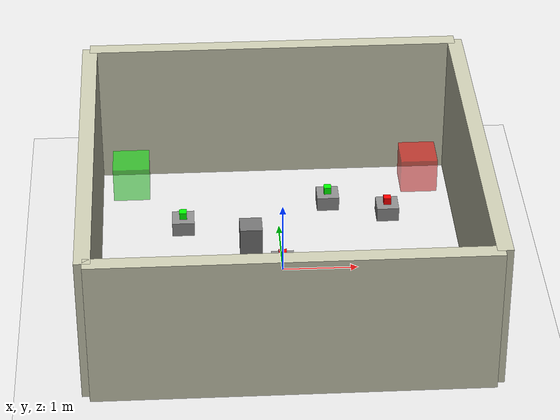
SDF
<?xml version="1.0" ?>
<sdf version="1.8">
  <world name="sorting_room">

    <!-- Physics -->
    <physics name="1ms" type="ignored">
      <max_step_size>0.001</max_step_size>
      <real_time_factor>1.0</real_time_factor>
    </physics>

    <plugin filename="gz-sim-physics-system" name="gz::sim::systems::Physics"></plugin>
    <plugin filename="gz-sim-user-commands-system" name="gz::sim::systems::UserCommands"></plugin>
    <plugin filename="gz-sim-scene-broadcaster-system" name="gz::sim::systems::SceneBroadcaster"></plugin>
    <plugin filename="gz-sim-sensors-system" name="gz::sim::systems::Sensors">
      <render_engine>ogre2</render_engine>
    </plugin>

    <!-- Lighting -->
    <light type="directional" name="sun">
      <cast_shadows>true</cast_shadows>
      <pose>0 0 10 0 0 0</pose>
      <diffuse>0.8 0.8 0.8 1</diffuse>
      <specular>0.2 0.2 0.2 1</specular>
      <direction>-0.5 0.1 -0.9</direction>
    </light>

    <!-- Ground -->
    <model name="ground_plane">
      <static>true</static>
      <link name="link">
        <collision name="collision">
          <geometry>
            <plane>
              <normal>0 0 1</normal>
              <size>100 100</size>
            </plane>
          </geometry>
        </collision>
        <visual name="visual">
          <geometry>
            <plane>
              <normal>0 0 1</normal>
              <size>100 100</size>
            </plane>
          </geometry>
          <material>
            <ambient>0.9 0.9 0.9 1</ambient>
            <diffuse>0.9 0.9 0.9 1</diffuse>
          </material>
        </visual>
      </link>
    </model>

    <!-- ROOM WALLS (5m x 5m room) -->

    <!-- North Wall -->
    <model name="wall_north">
      <pose>0 2.5 1.0 0 0 0</pose>
      <static>true</static>
      <link name="link">
        <collision name="collision">
          <geometry>
            <box><size>5.0 0.2 2.0</size></box>
          </geometry>
        </collision>
        <visual name="visual">
          <geometry>
            <box><size>5.0 0.2 2.0</size></box>
          </geometry>
          <material>
            <ambient>0.8 0.8 0.7 1</ambient>
            <diffuse>0.8 0.8 0.7 1</diffuse>
          </material>
        </visual>
      </link>
    </model>

    <!-- South Wall -->
    <model name="wall_south">
      <pose>0 -2.5 1.0 0 0 0</pose>
      <static>true</static>
      <link name="link">
        <collision name="collision">
          <geometry>
            <box><size>5.0 0.2 2.0</size></box>
          </geometry>
        </collision>
        <visual name="visual">
          <geometry>
            <box><size>5.0 0.2 2.0</size></box>
          </geometry>
          <material>
            <ambient>0.8 0.8 0.7 1</ambient>
            <diffuse>0.8 0.8 0.7 1</diffuse>
          </material>
        </visual>
      </link>
    </model>

    <!-- East Wall -->
    <model name="wall_east">
      <pose>2.5 0 1.0 0 0 0</pose>
      <static>true</static>
      <link name="link">
        <collision name="collision">
          <geometry>
            <box><size>0.2 5.0 2.0</size></box>
          </geometry>
        </collision>
        <visual name="visual">
          <geometry>
            <box><size>0.2 5.0 2.0</size></box>
          </geometry>
          <material>
            <ambient>0.8 0.8 0.7 1</ambient>
            <diffuse>0.8 0.8 0.7 1</diffuse>
          </material>
        </visual>
      </link>
    </model>

    <!-- West Wall -->
    <model name="wall_west">
      <pose>-2.5 0 1.0 0 0 0</pose>
      <static>true</static>
      <link name="link">
        <collision name="collision">
          <geometry>
            <box><size>0.2 5.0 2.0</size></box>
          </geometry>
        </collision>
        <visual name="visual">
          <geometry>
            <box><size>0.2 5.0 2.0</size></box>
          </geometry>
          <material>
            <ambient>0.8 0.8 0.7 1</ambient>
            <diffuse>0.8 0.8 0.7 1</diffuse>
          </material>
        </visual>
      </link>
    </model>

    <!-- RED BASKET (Collection point for red boxes) -->
    <model name="red_basket">
      <pose>2.0 2.0 0.25 0 0 0</pose>
      <static>true</static>
      <link name="link">
        <collision name="collision">
          <geometry>
            <box><size>0.5 0.5 0.5</size></box>
          </geometry>
        </collision>
        <visual name="visual">
          <geometry>
            <box><size>0.5 0.5 0.5</size></box>
          </geometry>
          <material>
            <ambient>1 0 0 0.5</ambient>
            <diffuse>1 0 0 0.5</diffuse>
          </material>
        </visual>
      </link>
    </model>

    <!-- GREEN BASKET -->
    <model name="green_basket">
      <pose>-2.0 2.0 0.25 0 0 0</pose>
      <static>true</static>
      <link name="link">
        <collision name="collision">
          <geometry>
            <box><size>0.5 0.5 0.5</size></box>
          </geometry>
        </collision>
        <visual name="visual">
          <geometry>
            <box><size>0.5 0.5 0.5</size></box>
          </geometry>
          <material>
            <ambient>0 1 0 0.5</ambient>
            <diffuse>0 1 0 0.5</diffuse>
          </material>
        </visual>
      </link>
    </model>

    <!-- BLUE BASKET -->
    <model name="blue_basket">
      <pose>-2.0 -2.0 0.25 0 0 0</pose>
      <static>true</static>
      <link name="link">
        <collision name="collision">
          <geometry>
            <box><size>0.5 0.5 0.5</size></box>
          </geometry>
        </collision>
        <visual name="visual">
          <geometry>
            <box><size>0.5 0.5 0.5</size></box>
          </geometry>
          <material>
            <ambient>0 0 1 0.5</ambient>
            <diffuse>0 0 1 0.5</diffuse>
          </material>
        </visual>
      </link>
    </model>

    <!-- SMALL COLORED BOXES (0.10m) on 0.20m PEDESTALS -->
    <model name="pedestal_red_box_1">
      <pose>0.0 0.0 0.10 0 0 0</pose>
      <static>true</static>
      <link name="link">
        <collision name="collision">
          <geometry>
            <box><size>0.30 0.30 0.20</size></box>
          </geometry>
        </collision>
        <visual name="visual">
          <geometry>
            <box><size>0.30 0.30 0.20</size></box>
          </geometry>
          <material>
            <ambient>0.55 0.55 0.55 1</ambient>
            <diffuse>0.55 0.55 0.55 1</diffuse>
          </material>
        </visual>
      </link>
    </model>
    <model name="red_box_1">
      <pose>0.0 0.0 0.25 0 0 0.0</pose>
      <static>false</static>
      <link name="link">
        <inertial>
          <mass>0.20</mass>
          <inertia>
            <ixx>0.00033</ixx>
            <iyy>0.00033</iyy>
            <izz>0.00033</izz>
          </inertia>
        </inertial>
        <collision name="collision">
          <geometry>
            <box><size>0.10 0.10 0.10</size></box>
          </geometry>
        </collision>
        <visual name="visual">
          <geometry>
            <box><size>0.10 0.10 0.10</size></box>
          </geometry>
          <material>
            <ambient>1 0 0 1</ambient>
            <diffuse>1 0 0 1</diffuse>
          </material>
        </visual>
      </link>
    </model>

    <model name="pedestal_red_box_2">
      <pose>1.5 1.2 0.10 0 0 0</pose>
      <static>true</static>
      <link name="link">
        <collision name="collision">
          <geometry>
            <box><size>0.30 0.30 0.20</size></box>
          </geometry>
        </collision>
        <visual name="visual">
          <geometry>
            <box><size>0.30 0.30 0.20</size></box>
          </geometry>
          <material>
            <ambient>0.55 0.55 0.55 1</ambient>
            <diffuse>0.55 0.55 0.55 1</diffuse>
          </material>
        </visual>
      </link>
    </model>
    <model name="red_box_2">
      <pose>1.5 1.2 0.25 0 0 0.0</pose>
      <static>false</static>
      <link name="link">
        <inertial>
          <mass>0.20</mass>
          <inertia>
            <ixx>0.00033</ixx>
            <iyy>0.00033</iyy>
            <izz>0.00033</izz>
          </inertia>
        </inertial>
        <collision name="collision">
          <geometry>
            <box><size>0.10 0.10 0.10</size></box>
          </geometry>
        </collision>
        <visual name="visual">
          <geometry>
            <box><size>0.10 0.10 0.10</size></box>
          </geometry>
          <material>
            <ambient>1 0 0 1</ambient>
            <diffuse>1 0 0 1</diffuse>
          </material>
        </visual>
      </link>
    </model>

    <model name="pedestal_green_box_1">
      <pose>-1.3 1.0 0.10 0 0 0</pose>
      <static>true</static>
      <link name="link">
        <collision name="collision">
          <geometry>
            <box><size>0.30 0.30 0.20</size></box>
          </geometry>
        </collision>
        <visual name="visual">
          <geometry>
            <box><size>0.30 0.30 0.20</size></box>
          </geometry>
          <material>
            <ambient>0.55 0.55 0.55 1</ambient>
            <diffuse>0.55 0.55 0.55 1</diffuse>
          </material>
        </visual>
      </link>
    </model>
    <model name="green_box_1">
      <pose>-1.3 1.0 0.25 0 0 0.0</pose>
      <static>false</static>
      <link name="link">
        <inertial>
          <mass>0.20</mass>
          <inertia>
            <ixx>0.00033</ixx>
            <iyy>0.00033</iyy>
            <izz>0.00033</izz>
          </inertia>
        </inertial>
        <collision name="collision">
          <geometry>
            <box><size>0.10 0.10 0.10</size></box>
          </geometry>
        </collision>
        <visual name="visual">
          <geometry>
            <box><size>0.10 0.10 0.10</size></box>
          </geometry>
          <material>
            <ambient>0 1 0 1</ambient>
            <diffuse>0 1 0 1</diffuse>
          </material>
        </visual>
      </link>
    </model>

    <model name="pedestal_green_box_2">
      <pose>0.7 1.5 0.10 0 0 0</pose>
      <static>true</static>
      <link name="link">
        <collision name="collision">
          <geometry>
            <box><size>0.30 0.30 0.20</size></box>
          </geometry>
        </collision>
        <visual name="visual">
          <geometry>
            <box><size>0.30 0.30 0.20</size></box>
          </geometry>
          <material>
            <ambient>0.55 0.55 0.55 1</ambient>
            <diffuse>0.55 0.55 0.55 1</diffuse>
          </material>
        </visual>
      </link>
    </model>
    <model name="green_box_2">
      <pose>0.7 1.5 0.25 0 0 0.0</pose>
      <static>false</static>
      <link name="link">
        <inertial>
          <mass>0.20</mass>
          <inertia>
            <ixx>0.00033</ixx>
            <iyy>0.00033</iyy>
            <izz>0.00033</izz>
          </inertia>
        </inertial>
        <collision name="collision">
          <geometry>
            <box><size>0.10 0.10 0.10</size></box>
          </geometry>
        </collision>
        <visual name="visual">
          <geometry>
            <box><size>0.10 0.10 0.10</size></box>
          </geometry>
          <material>
            <ambient>0 1 0 1</ambient>
            <diffuse>0 1 0 1</diffuse>
          </material>
        </visual>
      </link>
    </model>

    <model name="pedestal_blue_box_1">
      <pose>-0.8 -0.8 0.10 0 0 0</pose>
      <static>true</static>
      <link name="link">
        <collision name="collision">
          <geometry>
            <box><size>0.30 0.30 0.20</size></box>
          </geometry>
        </collision>
        <visual name="visual">
          <geometry>
            <box><size>0.30 0.30 0.20</size></box>
          </geometry>
          <material>
            <ambient>0.55 0.55 0.55 1</ambient>
            <diffuse>0.55 0.55 0.55 1</diffuse>
          </material>
        </visual>
      </link>
    </model>
    <model name="blue_box_1">
      <pose>-0.8 -0.8 0.25 0 0 0.0</pose>
      <static>false</static>
      <link name="link">
        <inertial>
          <mass>0.20</mass>
          <inertia>
            <ixx>0.00033</ixx>
            <iyy>0.00033</iyy>
            <izz>0.00033</izz>
          </inertia>
        </inertial>
        <collision name="collision">
          <geometry>
            <box><size>0.10 0.10 0.10</size></box>
          </geometry>
        </collision>
        <visual name="visual">
          <geometry>
            <box><size>0.10 0.10 0.10</size></box>
          </geometry>
          <material>
            <ambient>0 0 1 1</ambient>
            <diffuse>0 0 1 1</diffuse>
          </material>
        </visual>
      </link>
    </model>

    <model name="pedestal_blue_box_2">
      <pose>-1.2 -1.3 0.10 0 0 0</pose>
      <static>true</static>
      <link name="link">
        <collision name="collision">
          <geometry>
            <box><size>0.30 0.30 0.20</size></box>
          </geometry>
        </collision>
        <visual name="visual">
          <geometry>
            <box><size>0.30 0.30 0.20</size></box>
          </geometry>
          <material>
            <ambient>0.55 0.55 0.55 1</ambient>
            <diffuse>0.55 0.55 0.55 1</diffuse>
          </material>
        </visual>
      </link>
    </model>
    <model name="blue_box_2">
      <pose>-1.2 -1.3 0.25 0 0 0.0</pose>
      <static>false</static>
      <link name="link">
        <inertial>
          <mass>0.20</mass>
          <inertia>
            <ixx>0.00033</ixx>
            <iyy>0.00033</iyy>
            <izz>0.00033</izz>
          </inertia>
        </inertial>
        <collision name="collision">
          <geometry>
            <box><size>0.10 0.10 0.10</size></box>
          </geometry>
        </collision>
        <visual name="visual">
          <geometry>
            <box><size>0.10 0.10 0.10</size></box>
          </geometry>
          <material>
            <ambient>0 0 1 1</ambient>
            <diffuse>0 0 1 1</diffuse>
          </material>
        </visual>
      </link>
    </model>

    <model name="extra_obstacle_1">
      <pose>0.6 -0.4 0.2 0 0 0</pose>
      <static>true</static>
      <link name="link">
        <collision name="collision">
          <geometry>
            <box><size>0.3 0.3 0.4</size></box>
          </geometry>
        </collision>
        <visual name="visual">
          <geometry>
            <box><size>0.3 0.3 0.4</size></box>
          </geometry>
          <material>
            <ambient>0.45 0.45 0.45 1</ambient>
            <diffuse>0.45 0.45 0.45 1</diffuse>
          </material>
        </visual>
      </link>
    </model>
    <model name="extra_obstacle_2">
      <pose>-0.4 0.5 0.2 0 0 0</pose>
      <static>true</static>
      <link name="link">
        <collision name="collision">
          <geometry>
            <box><size>0.3 0.3 0.4</size></box>
          </geometry>
        </collision>
        <visual name="visual">
          <geometry>
            <box><size>0.3 0.3 0.4</size></box>
          </geometry>
          <material>
            <ambient>0.45 0.45 0.45 1</ambient>
            <diffuse>0.45 0.45 0.45 1</diffuse>
          </material>
        </visual>
      </link>
    </model>

  </world>
</sdf>
